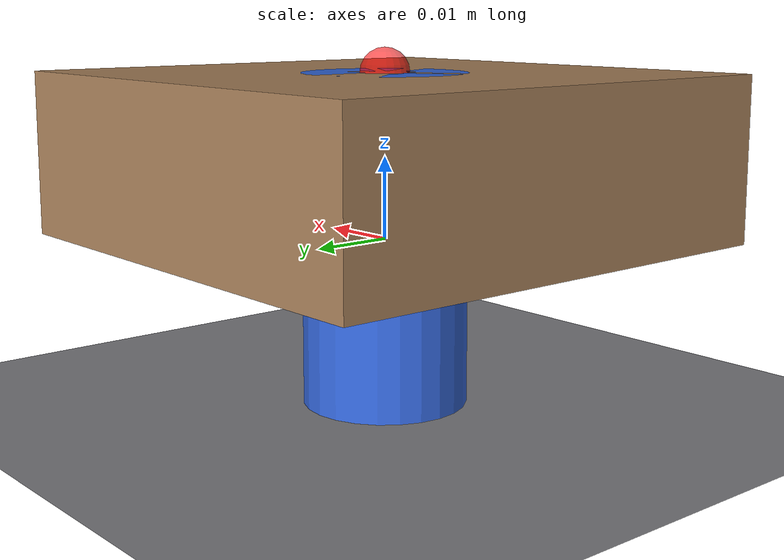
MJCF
<mujoco model="ard_gen_tacker">
  <compiler angle="radian"/>
  <option timestep="0.002" integrator="implicitfast" gravity="0 0 -9.81"/>
  <visual>
    <headlight ambient="0.4 0.4 0.4" diffuse="0.6 0.6 0.6" specular="0.1 0.1 0.1"/>
  </visual>

  <default>
    <default class="tacker_contact">
      <geom contype="1" conaffinity="1" condim="4" friction="0.4 0.005 0.0001" solref="0.002 1" solimp="0.9 0.95 0.001"/>
    </default>
  </default>

  <worldbody>
    <light pos="0.3 0 1" dir="0 0 -1" diffuse="0.8 0.8 0.8"/>
    <light pos="0.6 -0.3 0.6" dir="-0.4 0.4 -0.7" diffuse="0.4 0.4 0.4"/>

    <geom name="ground" type="plane" pos="0 0 -0.02" size="0.8 0.8 0.01" contype="0" conaffinity="0" rgba="0.5 0.5 0.52 1"/>
    <!-- 테이블: workpiece가 초기 낙하 없이 바로 얹혀 쉬도록 z=0에 둔다
         (workpiece 바디 pos z=half_height가 곧 바닥면이 닿는 자리). -->
    <geom name="tacker_table" type="plane" pos="0 0 0" size="0.8 0.8 0.01"
          contype="1" conaffinity="1" friction="1.0 0.005 0.0001" rgba="0.6 0.5 0.4 1"/>

    <camera name="top_cam" mode="targetbody" target="workpiece" pos="0.25 0.25 0.3"/>

    <!-- workpiece: 못을 박을 얇은 나무판. half-height 0.01이라 body pos
         z=0.01이면 바닥이 정확히 테이블면(z=0)에 닿는다. -->
    <body name="workpiece" pos="0 0 0.01">
      <freejoint name="workpiece_free"/>
      <inertial pos="0 0 0" mass="0.15" diaginertia="1e-4 1e-4 1.5e-4"/>
      <geom class="tacker_contact" name="workpiece_geom" type="box" size="0.03 0.03 0.01" rgba="0.65 0.5 0.35 1"/>
      <!-- 로컬 xy는 reset()이 site_pos로 덮어쓴다(무작위 조준점) -- z는
           top face(+half_height)에 고정. -->
      <site name="nail_site" pos="0 0 0.01" size="0.003" rgba="1 0 0 0.6"/>
    </body>

    <!-- Actuator 가상 엔드이펙터(tacker_ee): sim/stabilizer.py의 stabilizer_ee와
         자매 설계 -- 위 docstring 참고. -->
    <body name="tacker_ee" pos="0 0 0">
      <joint name="act_x" type="slide" axis="1 0 0" damping="90"/>
      <joint name="act_y" type="slide" axis="0 1 0" damping="90"/>
      <joint name="act_z" type="slide" axis="0 0 1" damping="90"/>
      <inertial pos="0 0 0" mass="0.1" diaginertia="1e-5 1e-5 1e-5"/>
      <geom name="tacker_tool_geom" type="cylinder" size="0.01 0.02" contype="0" conaffinity="0" rgba="0.2 0.4 0.85 1"/>
      <site name="tacker_tip_site" pos="0 0 0" size="0.004" rgba="0.9 0.9 0.1 1"/>
    </body>

    <body name="stabilizer_ee" pos="0 0 0">
      <joint name="stab_x" type="slide" axis="1 0 0" damping="90"/>
      <joint name="stab_y" type="slide" axis="0 1 0" damping="90"/>
      <joint name="stab_z" type="slide" axis="0 0 1" damping="90"/>
      <inertial pos="0 0 0" mass="0.1" diaginertia="1e-5 1e-5 1e-5"/>
      <geom name="stabilizer_ee_geom" type="sphere" size="0.012" contype="0" conaffinity="0" rgba="0.2 0.8 0.3 1"/>
      <site name="stabilizer_ee_site" pos="0 0 0" size="0.005"/>
    </body>
  </worldbody>

  <equality>
    <weld name="stabilizer_weld" body1="stabilizer_ee" body2="workpiece"
          solref="0.002 1" solimp="0.95 0.99 0.0001 0.5 2" active="false"/>
  </equality>

  <actuator>
    <position name="act_x" joint="act_x" kp="20000" forcerange="-3000 3000"/>
    <position name="act_y" joint="act_y" kp="20000" forcerange="-3000 3000"/>
    <position name="act_z" joint="act_z" kp="20000" forcerange="-3000 3000"/>
  </actuator>

  <actuator>
    <position name="stab_x" joint="stab_x" kp="20000" forcerange="-3000 3000"/>
    <position name="stab_y" joint="stab_y" kp="20000" forcerange="-3000 3000"/>
    <position name="stab_z" joint="stab_z" kp="20000" forcerange="-3000 3000"/>
  </actuator>

</mujoco>
